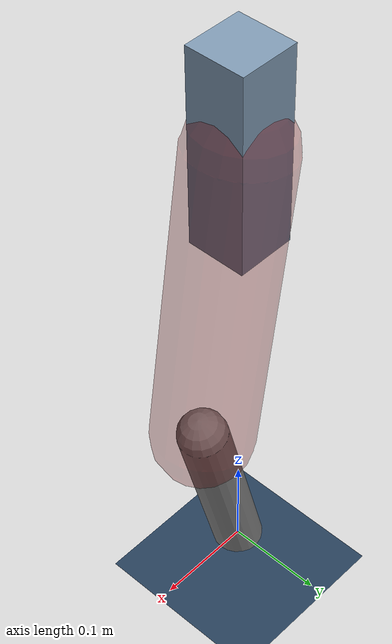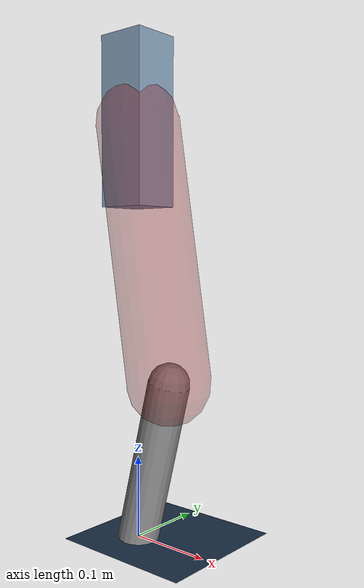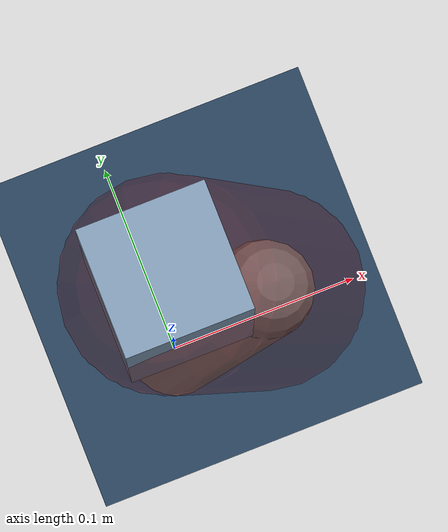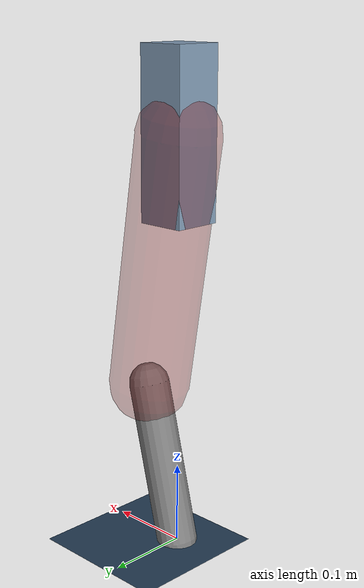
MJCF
<mujoco model="Hopper2D">
	<compiler inertiafromgeom="true" angle="radian" />
	<option timestep="0.001" integrator="implicit" cone="elliptic" solver="Newton" tolerance="1e-10" />

	<default>
		<geom contype="1" conaffinity="1" condim="3" friction="2 0.005 0.0001" solref="0.005 1" />
		<joint limited="true" damping="0.1" />
	</default>

	<asset>
		<texture name="skybox" type="skybox" builtin="gradient" rgb1=".4 .6 .8" rgb2="0 0 0" width="800" height="800" />
		<texture name="grid" type="2d" builtin="checker" rgb1=".1 .2 .3" rgb2=".2 .3 .4" width="300" height="300" mark="edge" markrgb=".2 .3 .4" />
		<material name="ground" texture="grid" texrepeat="1 1" texuniform="true" reflectance="0.1" />
		<material name="leg" rgba="0.5 0.6 0.7 1" />
	</asset>

	<worldbody>

		<geom name="floor" type="plane" size="5 5 0.25" material="ground" />

		<light directional="false" diffuse="0.8 0.8 0.8" specular="0.3 0.3 0.3" pos="0 0 2" dir="0 0 -1" />
		<light mode="targetbodycom" target="base" directional="false" diffuse="0.8 0.8 0.8" specular="0.3 0.3 0.3" pos="0 0 2" dir="0 0 -1" />

		<camera name="fixed" pos="0 -2 1" xyaxes="1 0 0 0 0 1" />
		<camera name="tracking" mode="trackcom" pos="0 -3 1" />

		<body name="root" pos="0 0 0.5051033127960428">
			<joint name="slide_x" type="slide" axis="1 0 0" range="-100 100" />
			<joint name="slide_z" type="slide" axis="0 0 1" range="0 10" />

			<body name="base" pos="0 0 0">
				<geom name="torso" type="box" size="0.03 0.03 0.1" mass="2.449" material="leg" />

				<body name="link1" pos="0 0 0" euler="0 1.4120502216375628 0">
					<joint type="hinge" axis="0 -1 0" pos="0 0 0" name="hinge1" limited="true" range="-3.14 3.14" stiffness="0" damping="0.1" />
					<geom name="thigh" type="capsule" fromto="0 0 0 0.3119701426712026 0 0" size="0.05" rgba="0.5 0 0 0.3" mass="1.021219385212247" />

					<body name="link2" pos="0.3119701426712026 0 0" euler="0 0.40397480611017245 0">
						<joint type="hinge" axis="0 -1 0" pos="0 0 0" name="hinge2" limited="true" range="-3.14 3.14" stiffness="0" damping="0.1" />
						<geom name="shank" type="capsule" fromto="0 0 0 0.20313317012484022 0 0" size="0.025" mass="0.40351985311235616" />

					</body>
				</body>
			</body>
		</body>
	</worldbody>

	<actuator>
		<motor name="torque1" joint="hinge1" ctrlrange="-73.87350257008083 73.87350257008083" ctrllimited="true" gear="1" />
		<motor name="torque2" joint="hinge2" ctrlrange="-97.92193294180376 97.92193294180376" ctrllimited="true" gear="1" />
	</actuator>
</mujoco>
